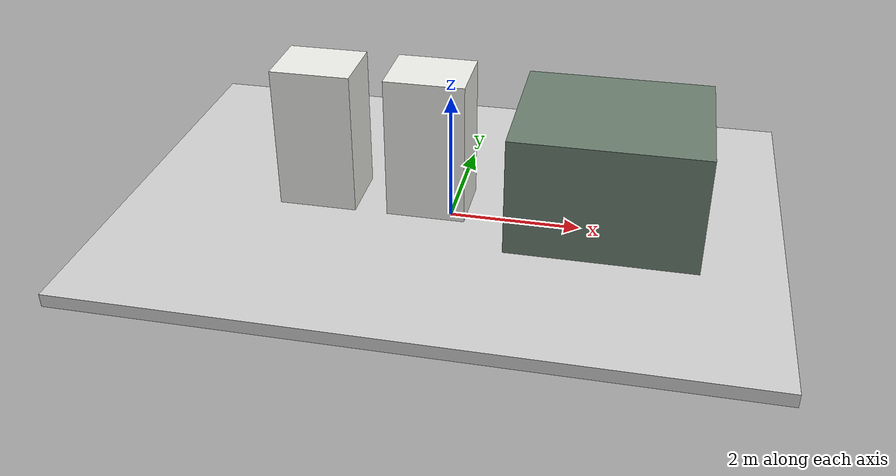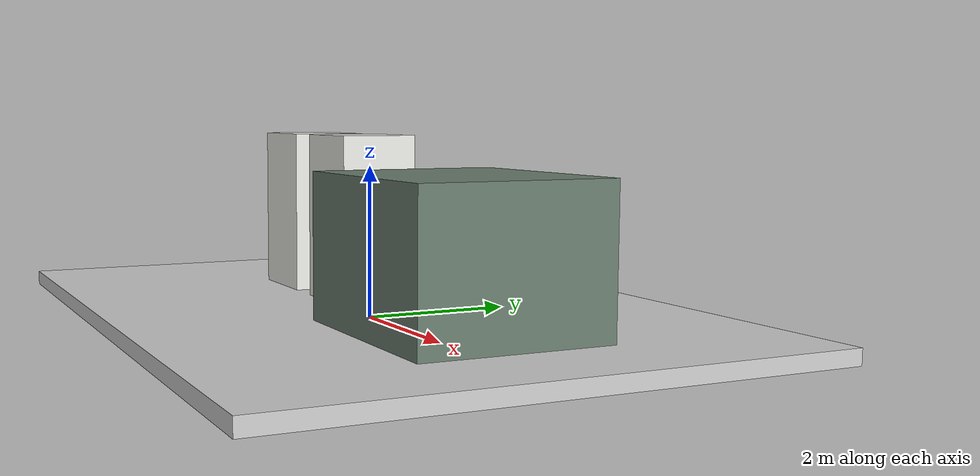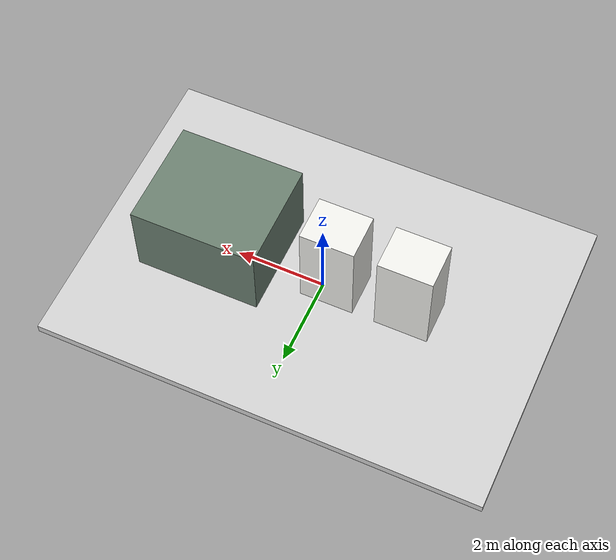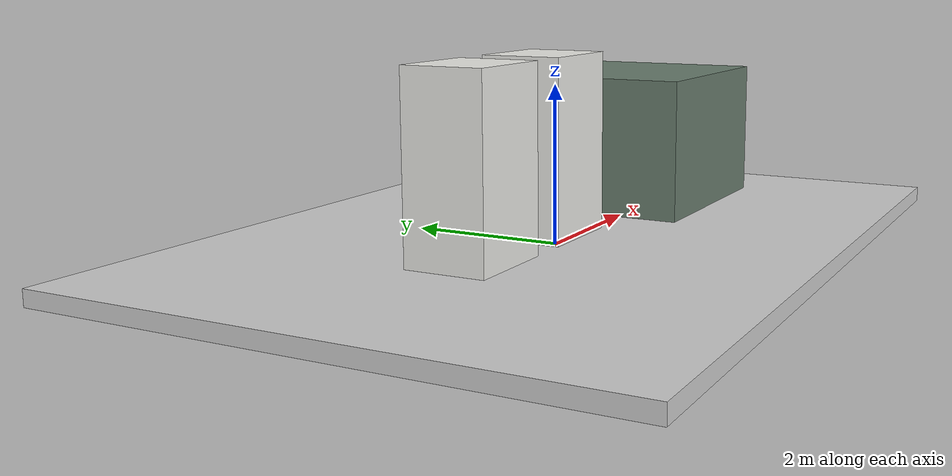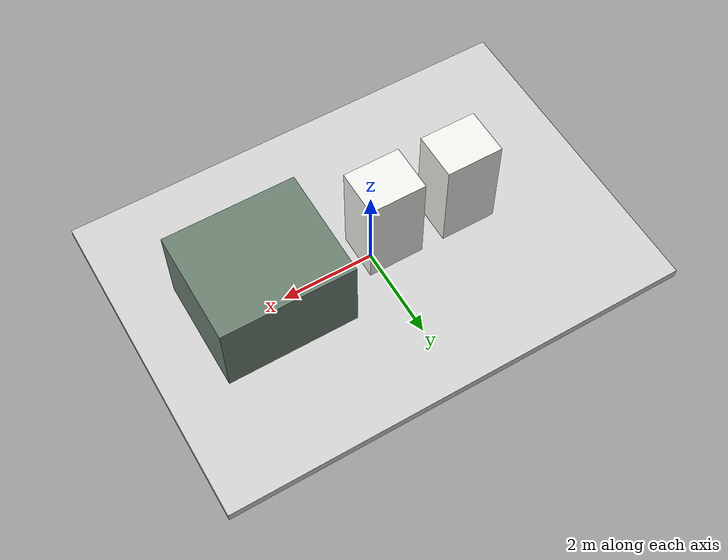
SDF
<?xml version="1.0" ?>
<sdf version="1.9">
  <model name="inverter_pad">
    <static>true</static>
    <link name="pad_link">
      <collision name="pad_collision">
        <pose>0 0 0.1 0 0 0</pose>
        <geometry>
          <box>
            <size>10 7 0.2</size>
          </box>
        </geometry>
      </collision>

      <visual name="pad_visual">
        <pose>0 0 0.1 0 0 0</pose>
        <geometry>
          <box>
            <size>10 7 0.2</size>
          </box>
        </geometry>
        <material>
          <ambient>0.72 0.72 0.72 1</ambient>
          <diffuse>0.82 0.82 0.82 1</diffuse>
        </material>
      </visual>

      <visual name="cabinet_a">
        <pose>-2.0 0.0 1.2 0 0 0</pose>
        <geometry>
          <box>
            <size>1.2 1.0 2.4</size>
          </box>
        </geometry>
        <material>
          <ambient>0.88 0.88 0.86 1</ambient>
          <diffuse>0.94 0.94 0.92 1</diffuse>
        </material>
      </visual>

      <visual name="cabinet_b">
        <pose>-0.3 0.0 1.2 0 0 0</pose>
        <geometry>
          <box>
            <size>1.2 1.0 2.4</size>
          </box>
        </geometry>
        <material>
          <ambient>0.88 0.88 0.86 1</ambient>
          <diffuse>0.94 0.94 0.92 1</diffuse>
        </material>
      </visual>

      <visual name="transformer">
        <pose>2.4 0 1.0 0 0 0</pose>
        <geometry>
          <box>
            <size>2.8 2.4 2.0</size>
          </box>
        </geometry>
        <material>
          <ambient>0.34 0.42 0.36 1</ambient>
          <diffuse>0.42 0.50 0.44 1</diffuse>
        </material>
      </visual>

      <visual name="hotspot_marker">
        <pose>3.8 1.4 0.15 0 0 0</pose>
        <geometry>
          <cylinder>
            <radius>0.5</radius>
            <length>0.05</length>
          </cylinder>
        </geometry>
        <material>
          <ambient>0.80 0.18 0.12 1</ambient>
          <diffuse>0.92 0.24 0.18 1</diffuse>
          <emissive>0.32 0.06 0.04 1</emissive>
        </material>
      </visual>
    </link>
  </model>
</sdf>
